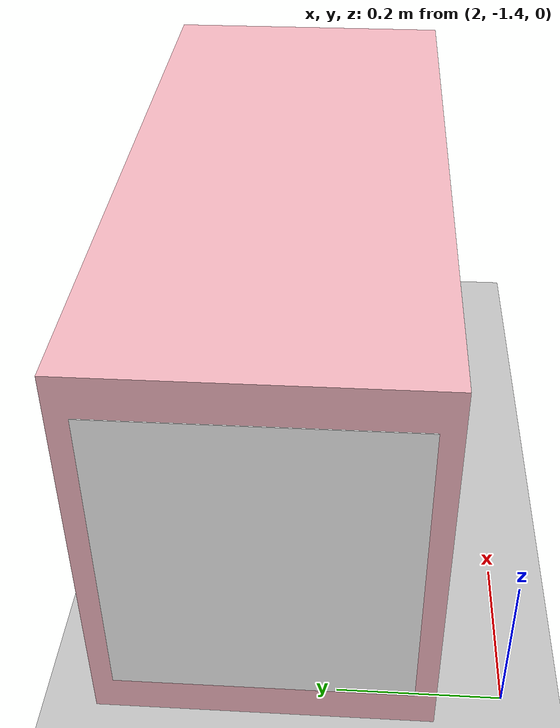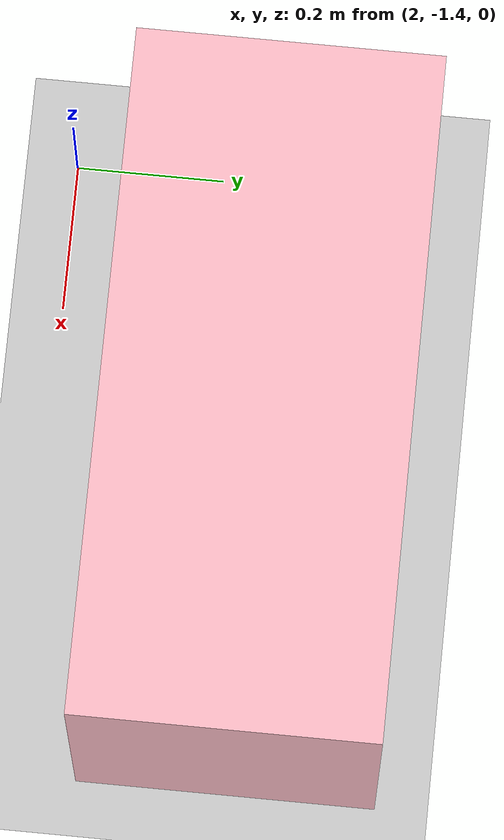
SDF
<sdf version="1.9">
 <world name="pig_pen_8units_world">
  <model name="ground_plane">
   <static>true</static>
   <link name="link">
    <collision name="collision">
     <geometry><plane><normal>0 0 1</normal><size>20 20</size></plane></geometry>
     <surface><friction><ode><mu>1.0</mu><mu2>1.0</mu2></ode></friction></surface>
    </collision>
    <visual name="visual">
     <geometry><plane><normal>0 0 1</normal><size>20 20</size></plane></geometry>
     <material>
      <ambient>0.8 0.8 0.8 1</ambient>
      <diffuse>0.8 0.8 0.8 1</diffuse>
      <specular>0.2 0.2 0.2 1</specular>
     </material>
    </visual>
   </link>
  </model>
  <include><uri>model://farm_pig</uri><name>pig7</name><pose>2.4 -1.115 0.27 0 0 3.1416</pose></include>
 </world>
</sdf>
